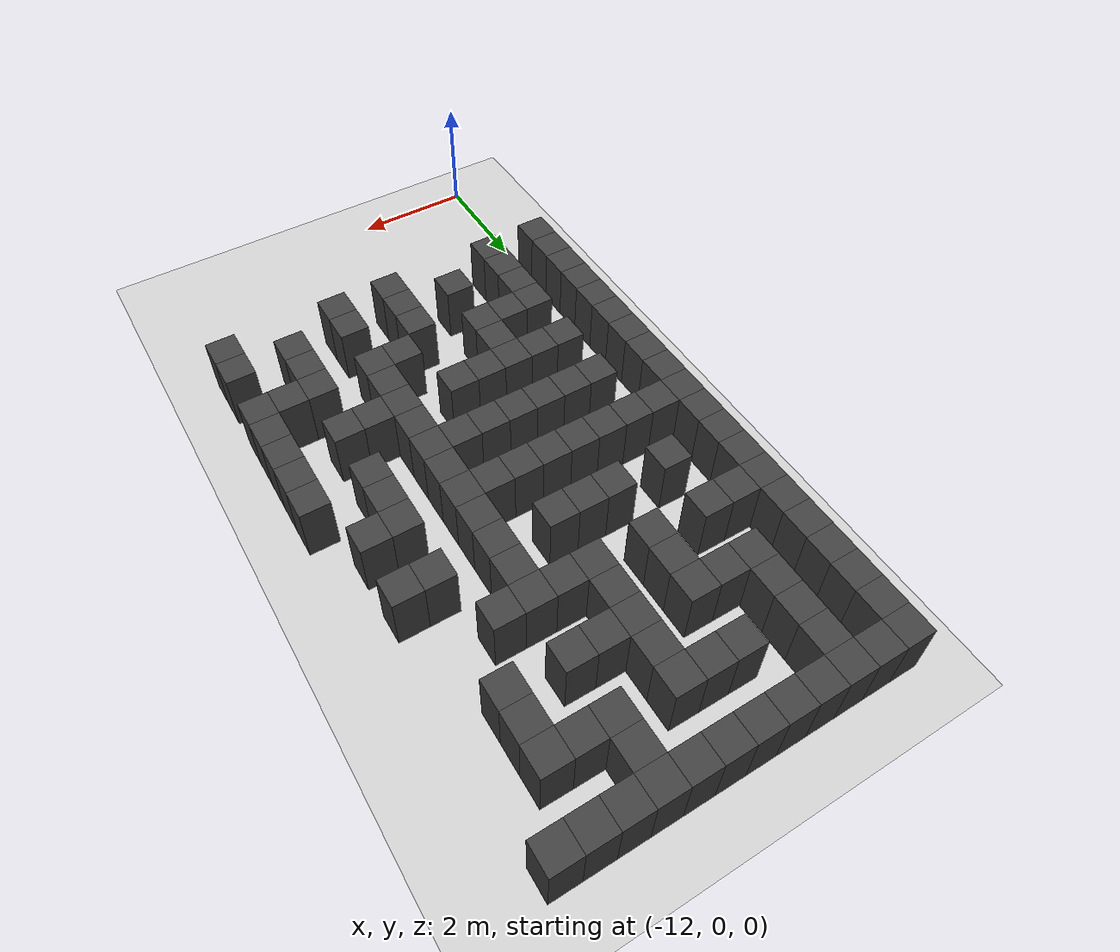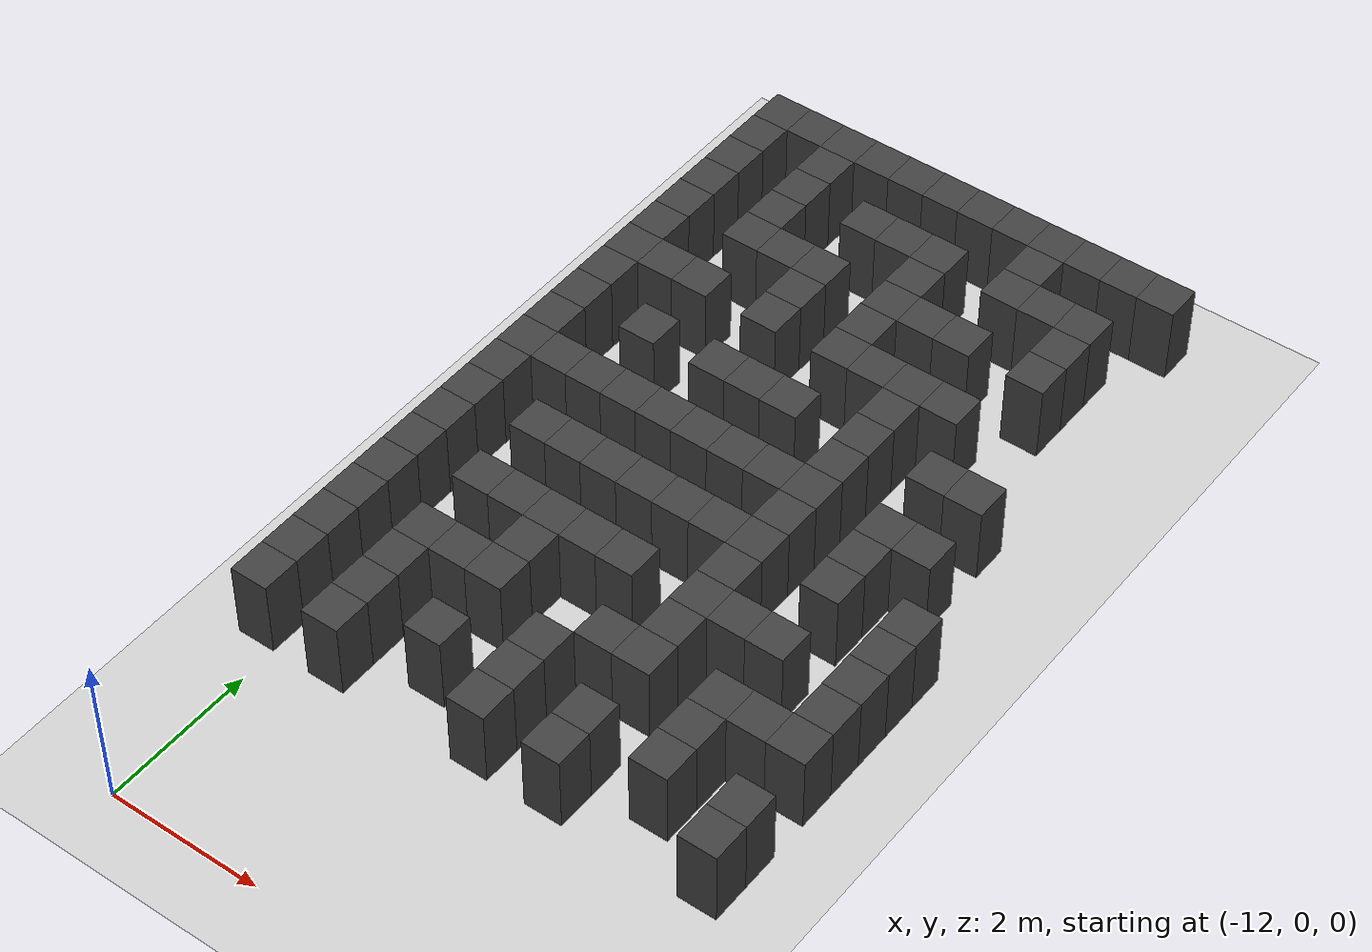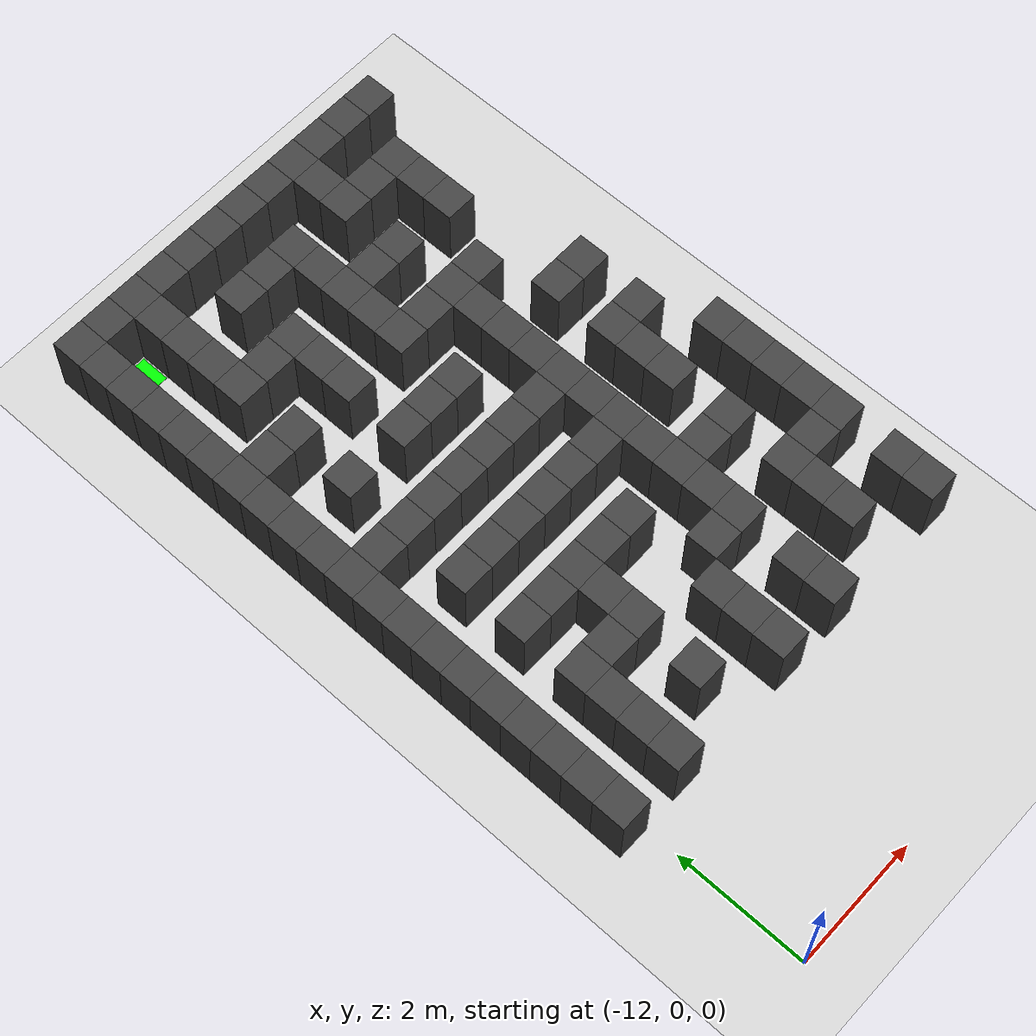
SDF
<sdf version="1.7">
 <world name="map_16734">
  <model name="ground_plane">
   <static>true</static>
   <link name="link">
    <collision name="collision">
     <geometry><plane><normal>0 0 1</normal><size>200 200</size></plane></geometry>
    </collision>
    <visual name="visual">
     <geometry><plane><normal>0 0 1</normal><size>200 200</size></plane></geometry>
     <material><ambient>0.8 0.8 0.8 1</ambient><diffuse>0.8 0.8 0.8 1</diffuse></material>
    </visual>
   </link>
  </model>
  <model name="maze_environment">
   <static>true</static>
   <link name="wall_0">
    <pose>-12.250 12.250 0.500 0 0 0</pose>
    <collision name="col"><geometry><box><size>0.5 0.5 1.0</size></box></geometry></collision>
    <visual name="vis">
     <geometry><box><size>0.5 0.5 1.0</size></box></geometry>
     <material><ambient>0.15 0.15 0.15 1</ambient><diffuse>0.25 0.25 0.25 1</diffuse></material>
    </visual>
   </link>
   <link name="wall_1">
    <pose>-11.750 12.250 0.500 0 0 0</pose>
    <collision name="col"><geometry><box><size>0.5 0.5 1.0</size></box></geometry></collision>
    <visual name="vis">
     <geometry><box><size>0.5 0.5 1.0</size></box></geometry>
     <material><ambient>0.15 0.15 0.15 1</ambient><diffuse>0.25 0.25 0.25 1</diffuse></material>
    </visual>
   </link>
   <link name="wall_2">
    <pose>-11.250 12.250 0.500 0 0 0</pose>
    <collision name="col"><geometry><box><size>0.5 0.5 1.0</size></box></geometry></collision>
    <visual name="vis">
     <geometry><box><size>0.5 0.5 1.0</size></box></geometry>
     <material><ambient>0.15 0.15 0.15 1</ambient><diffuse>0.25 0.25 0.25 1</diffuse></material>
    </visual>
   </link>
   <link name="wall_3">
    <pose>-10.750 12.250 0.500 0 0 0</pose>
    <collision name="col"><geometry><box><size>0.5 0.5 1.0</size></box></geometry></collision>
    <visual name="vis">
     <geometry><box><size>0.5 0.5 1.0</size></box></geometry>
     <material><ambient>0.15 0.15 0.15 1</ambient><diffuse>0.25 0.25 0.25 1</diffuse></material>
    </visual>
   </link>
   <link name="wall_4">
    <pose>-10.250 12.250 0.500 0 0 0</pose>
    <collision name="col"><geometry><box><size>0.5 0.5 1.0</size></box></geometry></collision>
    <visual name="vis">
     <geometry><box><size>0.5 0.5 1.0</size></box></geometry>
     <material><ambient>0.15 0.15 0.15 1</ambient><diffuse>0.25 0.25 0.25 1</diffuse></material>
    </visual>
   </link>
   <link name="wall_5">
    <pose>-9.750 12.250 0.500 0 0 0</pose>
    <collision name="col"><geometry><box><size>0.5 0.5 1.0</size></box></geometry></collision>
    <visual name="vis">
     <geometry><box><size>0.5 0.5 1.0</size></box></geometry>
     <material><ambient>0.15 0.15 0.15 1</ambient><diffuse>0.25 0.25 0.25 1</diffuse></material>
    </visual>
   </link>
   <link name="wall_6">
    <pose>-9.250 12.250 0.500 0 0 0</pose>
    <collision name="col"><geometry><box><size>0.5 0.5 1.0</size></box></geometry></collision>
    <visual name="vis">
     <geometry><box><size>0.5 0.5 1.0</size></box></geometry>
     <material><ambient>0.15 0.15 0.15 1</ambient><diffuse>0.25 0.25 0.25 1</diffuse></material>
    </visual>
   </link>
   <link name="wall_7">
    <pose>-8.750 12.250 0.500 0 0 0</pose>
    <collision name="col"><geometry><box><size>0.5 0.5 1.0</size></box></geometry></collision>
    <visual name="vis">
     <geometry><box><size>0.5 0.5 1.0</size></box></geometry>
     <material><ambient>0.15 0.15 0.15 1</ambient><diffuse>0.25 0.25 0.25 1</diffuse></material>
    </visual>
   </link>
   <link name="wall_8">
    <pose>-8.250 12.250 0.500 0 0 0</pose>
    <collision name="col"><geometry><box><size>0.5 0.5 1.0</size></box></geometry></collision>
    <visual name="vis">
     <geometry><box><size>0.5 0.5 1.0</size></box></geometry>
     <material><ambient>0.15 0.15 0.15 1</ambient><diffuse>0.25 0.25 0.25 1</diffuse></material>
    </visual>
   </link>
   <link name="wall_9">
    <pose>-7.750 12.250 0.500 0 0 0</pose>
    <collision name="col"><geometry><box><size>0.5 0.5 1.0</size></box></geometry></collision>
    <visual name="vis">
     <geometry><box><size>0.5 0.5 1.0</size></box></geometry>
     <material><ambient>0.15 0.15 0.15 1</ambient><diffuse>0.25 0.25 0.25 1</diffuse></material>
    </visual>
   </link>
   <link name="wall_10">
    <pose>-7.250 12.250 0.500 0 0 0</pose>
    <collision name="col"><geometry><box><size>0.5 0.5 1.0</size></box></geometry></collision>
    <visual name="vis">
     <geometry><box><size>0.5 0.5 1.0</size></box></geometry>
     <material><ambient>0.15 0.15 0.15 1</ambient><diffuse>0.25 0.25 0.25 1</diffuse></material>
    </visual>
   </link>
   <link name="wall_11">
    <pose>-6.750 12.250 0.500 0 0 0</pose>
    <collision name="col"><geometry><box><size>0.5 0.5 1.0</size></box></geometry></collision>
    <visual name="vis">
     <geometry><box><size>0.5 0.5 1.0</size></box></geometry>
     <material><ambient>0.15 0.15 0.15 1</ambient><diffuse>0.25 0.25 0.25 1</diffuse></material>
    </visual>
   </link>
   <link name="wall_50">
    <pose>-12.250 11.750 0.500 0 0 0</pose>
    <collision name="col"><geometry><box><size>0.5 0.5 1.0</size></box></geometry></collision>
    <visual name="vis">
     <geometry><box><size>0.5 0.5 1.0</size></box></geometry>
     <material><ambient>0.15 0.15 0.15 1</ambient><diffuse>0.25 0.25 0.25 1</diffuse></material>
    </visual>
   </link>
   <link name="wall_51">
    <pose>-11.250 11.750 0.500 0 0 0</pose>
    <collision name="col"><geometry><box><size>0.5 0.5 1.0</size></box></geometry></collision>
    <visual name="vis">
     <geometry><box><size>0.5 0.5 1.0</size></box></geometry>
     <material><ambient>0.15 0.15 0.15 1</ambient><diffuse>0.25 0.25 0.25 1</diffuse></material>
    </visual>
   </link>
   <link name="wall_52">
    <pose>-8.250 11.750 0.500 0 0 0</pose>
    <collision name="col"><geometry><box><size>0.5 0.5 1.0</size></box></geometry></collision>
    <visual name="vis">
     <geometry><box><size>0.5 0.5 1.0</size></box></geometry>
     <material><ambient>0.15 0.15 0.15 1</ambient><diffuse>0.25 0.25 0.25 1</diffuse></material>
    </visual>
   </link>
   <link name="wall_58">
    <pose>-12.250 11.250 0.500 0 0 0</pose>
    <collision name="col"><geometry><box><size>0.5 0.5 1.0</size></box></geometry></collision>
    <visual name="vis">
     <geometry><box><size>0.5 0.5 1.0</size></box></geometry>
     <material><ambient>0.15 0.15 0.15 1</ambient><diffuse>0.25 0.25 0.25 1</diffuse></material>
    </visual>
   </link>
   <link name="wall_59">
    <pose>-11.250 11.250 0.500 0 0 0</pose>
    <collision name="col"><geometry><box><size>0.5 0.5 1.0</size></box></geometry></collision>
    <visual name="vis">
     <geometry><box><size>0.5 0.5 1.0</size></box></geometry>
     <material><ambient>0.15 0.15 0.15 1</ambient><diffuse>0.25 0.25 0.25 1</diffuse></material>
    </visual>
   </link>
   <link name="wall_60">
    <pose>-10.250 11.250 0.500 0 0 0</pose>
    <collision name="col"><geometry><box><size>0.5 0.5 1.0</size></box></geometry></collision>
    <visual name="vis">
     <geometry><box><size>0.5 0.5 1.0</size></box></geometry>
     <material><ambient>0.15 0.15 0.15 1</ambient><diffuse>0.25 0.25 0.25 1</diffuse></material>
    </visual>
   </link>
   <link name="wall_61">
    <pose>-9.750 11.250 0.500 0 0 0</pose>
    <collision name="col"><geometry><box><size>0.5 0.5 1.0</size></box></geometry></collision>
    <visual name="vis">
     <geometry><box><size>0.5 0.5 1.0</size></box></geometry>
     <material><ambient>0.15 0.15 0.15 1</ambient><diffuse>0.25 0.25 0.25 1</diffuse></material>
    </visual>
   </link>
   <link name="wall_62">
    <pose>-9.250 11.250 0.500 0 0 0</pose>
    <collision name="col"><geometry><box><size>0.5 0.5 1.0</size></box></geometry></collision>
    <visual name="vis">
     <geometry><box><size>0.5 0.5 1.0</size></box></geometry>
     <material><ambient>0.15 0.15 0.15 1</ambient><diffuse>0.25 0.25 0.25 1</diffuse></material>
    </visual>
   </link>
   <link name="wall_63">
    <pose>-8.250 11.250 0.500 0 0 0</pose>
    <collision name="col"><geometry><box><size>0.5 0.5 1.0</size></box></geometry></collision>
    <visual name="vis">
     <geometry><box><size>0.5 0.5 1.0</size></box></geometry>
     <material><ambient>0.15 0.15 0.15 1</ambient><diffuse>0.25 0.25 0.25 1</diffuse></material>
    </visual>
   </link>
   <link name="wall_64">
    <pose>-7.750 11.250 0.500 0 0 0</pose>
    <collision name="col"><geometry><box><size>0.5 0.5 1.0</size></box></geometry></collision>
    <visual name="vis">
     <geometry><box><size>0.5 0.5 1.0</size></box></geometry>
     <material><ambient>0.15 0.15 0.15 1</ambient><diffuse>0.25 0.25 0.25 1</diffuse></material>
    </visual>
   </link>
   <link name="wall_65">
    <pose>-7.250 11.250 0.500 0 0 0</pose>
    <collision name="col"><geometry><box><size>0.5 0.5 1.0</size></box></geometry></collision>
    <visual name="vis">
     <geometry><box><size>0.5 0.5 1.0</size></box></geometry>
     <material><ambient>0.15 0.15 0.15 1</ambient><diffuse>0.25 0.25 0.25 1</diffuse></material>
    </visual>
   </link>
   <link name="wall_96">
    <pose>-12.250 10.750 0.500 0 0 0</pose>
    <collision name="col"><geometry><box><size>0.5 0.5 1.0</size></box></geometry></collision>
    <visual name="vis">
     <geometry><box><size>0.5 0.5 1.0</size></box></geometry>
     <material><ambient>0.15 0.15 0.15 1</ambient><diffuse>0.25 0.25 0.25 1</diffuse></material>
    </visual>
   </link>
   <link name="wall_97">
    <pose>-11.250 10.750 0.500 0 0 0</pose>
    <collision name="col"><geometry><box><size>0.5 0.5 1.0</size></box></geometry></collision>
    <visual name="vis">
     <geometry><box><size>0.5 0.5 1.0</size></box></geometry>
     <material><ambient>0.15 0.15 0.15 1</ambient><diffuse>0.25 0.25 0.25 1</diffuse></material>
    </visual>
   </link>
   <link name="wall_98">
    <pose>-9.250 10.750 0.500 0 0 0</pose>
    <collision name="col"><geometry><box><size>0.5 0.5 1.0</size></box></geometry></collision>
    <visual name="vis">
     <geometry><box><size>0.5 0.5 1.0</size></box></geometry>
     <material><ambient>0.15 0.15 0.15 1</ambient><diffuse>0.25 0.25 0.25 1</diffuse></material>
    </visual>
   </link>
   <link name="wall_99">
    <pose>-7.250 10.750 0.500 0 0 0</pose>
    <collision name="col"><geometry><box><size>0.5 0.5 1.0</size></box></geometry></collision>
    <visual name="vis">
     <geometry><box><size>0.5 0.5 1.0</size></box></geometry>
     <material><ambient>0.15 0.15 0.15 1</ambient><diffuse>0.25 0.25 0.25 1</diffuse></material>
    </visual>
   </link>
   <link name="wall_108">
    <pose>-12.250 10.250 0.500 0 0 0</pose>
    <collision name="col"><geometry><box><size>0.5 0.5 1.0</size></box></geometry></collision>
    <visual name="vis">
     <geometry><box><size>0.5 0.5 1.0</size></box></geometry>
     <material><ambient>0.15 0.15 0.15 1</ambient><diffuse>0.25 0.25 0.25 1</diffuse></material>
    </visual>
   </link>
   <link name="wall_109">
    <pose>-11.250 10.250 0.500 0 0 0</pose>
    <collision name="col"><geometry><box><size>0.5 0.5 1.0</size></box></geometry></collision>
    <visual name="vis">
     <geometry><box><size>0.5 0.5 1.0</size></box></geometry>
     <material><ambient>0.15 0.15 0.15 1</ambient><diffuse>0.25 0.25 0.25 1</diffuse></material>
    </visual>
   </link>
   <link name="wall_110">
    <pose>-10.750 10.250 0.500 0 0 0</pose>
    <collision name="col"><geometry><box><size>0.5 0.5 1.0</size></box></geometry></collision>
    <visual name="vis">
     <geometry><box><size>0.5 0.5 1.0</size></box></geometry>
     <material><ambient>0.15 0.15 0.15 1</ambient><diffuse>0.25 0.25 0.25 1</diffuse></material>
    </visual>
   </link>
   <link name="wall_111">
    <pose>-10.250 10.250 0.500 0 0 0</pose>
    <collision name="col"><geometry><box><size>0.5 0.5 1.0</size></box></geometry></collision>
    <visual name="vis">
     <geometry><box><size>0.5 0.5 1.0</size></box></geometry>
     <material><ambient>0.15 0.15 0.15 1</ambient><diffuse>0.25 0.25 0.25 1</diffuse></material>
    </visual>
   </link>
   <link name="wall_112">
    <pose>-9.250 10.250 0.500 0 0 0</pose>
    <collision name="col"><geometry><box><size>0.5 0.5 1.0</size></box></geometry></collision>
    <visual name="vis">
     <geometry><box><size>0.5 0.5 1.0</size></box></geometry>
     <material><ambient>0.15 0.15 0.15 1</ambient><diffuse>0.25 0.25 0.25 1</diffuse></material>
    </visual>
   </link>
   <link name="wall_113">
    <pose>-8.750 10.250 0.500 0 0 0</pose>
    <collision name="col"><geometry><box><size>0.5 0.5 1.0</size></box></geometry></collision>
    <visual name="vis">
     <geometry><box><size>0.5 0.5 1.0</size></box></geometry>
     <material><ambient>0.15 0.15 0.15 1</ambient><diffuse>0.25 0.25 0.25 1</diffuse></material>
    </visual>
   </link>
   <link name="wall_114">
    <pose>-8.250 10.250 0.500 0 0 0</pose>
    <collision name="col"><geometry><box><size>0.5 0.5 1.0</size></box></geometry></collision>
    <visual name="vis">
     <geometry><box><size>0.5 0.5 1.0</size></box></geometry>
     <material><ambient>0.15 0.15 0.15 1</ambient><diffuse>0.25 0.25 0.25 1</diffuse></material>
    </visual>
   </link>
   <link name="wall_115">
    <pose>-7.250 10.250 0.500 0 0 0</pose>
    <collision name="col"><geometry><box><size>0.5 0.5 1.0</size></box></geometry></collision>
    <visual name="vis">
     <geometry><box><size>0.5 0.5 1.0</size></box></geometry>
     <material><ambient>0.15 0.15 0.15 1</ambient><diffuse>0.25 0.25 0.25 1</diffuse></material>
    </visual>
   </link>
   <link name="wall_145">
    <pose>-12.250 9.750 0.500 0 0 0</pose>
    <collision name="col"><geometry><box><size>0.5 0.5 1.0</size></box></geometry></collision>
    <visual name="vis">
     <geometry><box><size>0.5 0.5 1.0</size></box></geometry>
     <material><ambient>0.15 0.15 0.15 1</ambient><diffuse>0.25 0.25 0.25 1</diffuse></material>
    </visual>
   </link>
   <link name="wall_146">
    <pose>-10.250 9.750 0.500 0 0 0</pose>
    <collision name="col"><geometry><box><size>0.5 0.5 1.0</size></box></geometry></collision>
    <visual name="vis">
     <geometry><box><size>0.5 0.5 1.0</size></box></geometry>
     <material><ambient>0.15 0.15 0.15 1</ambient><diffuse>0.25 0.25 0.25 1</diffuse></material>
    </visual>
   </link>
   <link name="wall_147">
    <pose>-9.250 9.750 0.500 0 0 0</pose>
    <collision name="col"><geometry><box><size>0.5 0.5 1.0</size></box></geometry></collision>
    <visual name="vis">
     <geometry><box><size>0.5 0.5 1.0</size></box></geometry>
     <material><ambient>0.15 0.15 0.15 1</ambient><diffuse>0.25 0.25 0.25 1</diffuse></material>
    </visual>
   </link>
   <link name="wall_158">
    <pose>-12.250 9.250 0.500 0 0 0</pose>
    <collision name="col"><geometry><box><size>0.5 0.5 1.0</size></box></geometry></collision>
    <visual name="vis">
     <geometry><box><size>0.5 0.5 1.0</size></box></geometry>
     <material><ambient>0.15 0.15 0.15 1</ambient><diffuse>0.25 0.25 0.25 1</diffuse></material>
    </visual>
   </link>
   <link name="wall_159">
    <pose>-11.750 9.250 0.500 0 0 0</pose>
    <collision name="col"><geometry><box><size>0.5 0.5 1.0</size></box></geometry></collision>
    <visual name="vis">
     <geometry><box><size>0.5 0.5 1.0</size></box></geometry>
     <material><ambient>0.15 0.15 0.15 1</ambient><diffuse>0.25 0.25 0.25 1</diffuse></material>
    </visual>
   </link>
   <link name="wall_160">
    <pose>-11.250 9.250 0.500 0 0 0</pose>
    <collision name="col"><geometry><box><size>0.5 0.5 1.0</size></box></geometry></collision>
    <visual name="vis">
     <geometry><box><size>0.5 0.5 1.0</size></box></geometry>
     <material><ambient>0.15 0.15 0.15 1</ambient><diffuse>0.25 0.25 0.25 1</diffuse></material>
    </visual>
   </link>
   <link name="wall_161">
    <pose>-10.250 9.250 0.500 0 0 0</pose>
    <collision name="col"><geometry><box><size>0.5 0.5 1.0</size></box></geometry></collision>
    <visual name="vis">
     <geometry><box><size>0.5 0.5 1.0</size></box></geometry>
     <material><ambient>0.15 0.15 0.15 1</ambient><diffuse>0.25 0.25 0.25 1</diffuse></material>
    </visual>
   </link>
   <link name="wall_162">
    <pose>-9.250 9.250 0.500 0 0 0</pose>
    <collision name="col"><geometry><box><size>0.5 0.5 1.0</size></box></geometry></collision>
    <visual name="vis">
     <geometry><box><size>0.5 0.5 1.0</size></box></geometry>
     <material><ambient>0.15 0.15 0.15 1</ambient><diffuse>0.25 0.25 0.25 1</diffuse></material>
    </visual>
   </link>
   <link name="wall_163">
    <pose>-8.750 9.250 0.500 0 0 0</pose>
    <collision name="col"><geometry><box><size>0.5 0.5 1.0</size></box></geometry></collision>
    <visual name="vis">
     <geometry><box><size>0.5 0.5 1.0</size></box></geometry>
     <material><ambient>0.15 0.15 0.15 1</ambient><diffuse>0.25 0.25 0.25 1</diffuse></material>
    </visual>
   </link>
   <link name="wall_164">
    <pose>-8.250 9.250 0.500 0 0 0</pose>
    <collision name="col"><geometry><box><size>0.5 0.5 1.0</size></box></geometry></collision>
    <visual name="vis">
     <geometry><box><size>0.5 0.5 1.0</size></box></geometry>
     <material><ambient>0.15 0.15 0.15 1</ambient><diffuse>0.25 0.25 0.25 1</diffuse></material>
    </visual>
   </link>
   <link name="wall_165">
    <pose>-7.750 9.250 0.500 0 0 0</pose>
    <collision name="col"><geometry><box><size>0.5 0.5 1.0</size></box></geometry></collision>
    <visual name="vis">
     <geometry><box><size>0.5 0.5 1.0</size></box></geometry>
     <material><ambient>0.15 0.15 0.15 1</ambient><diffuse>0.25 0.25 0.25 1</diffuse></material>
    </visual>
   </link>
   <link name="wall_188">
    <pose>-12.250 8.750 0.500 0 0 0</pose>
    <collision name="col"><geometry><box><size>0.5 0.5 1.0</size></box></geometry></collision>
    <visual name="vis">
     <geometry><box><size>0.5 0.5 1.0</size></box></geometry>
     <material><ambient>0.15 0.15 0.15 1</ambient><diffuse>0.25 0.25 0.25 1</diffuse></material>
    </visual>
   </link>
   <link name="wall_189">
    <pose>-8.250 8.750 0.500 0 0 0</pose>
    <collision name="col"><geometry><box><size>0.5 0.5 1.0</size></box></geometry></collision>
    <visual name="vis">
     <geometry><box><size>0.5 0.5 1.0</size></box></geometry>
     <material><ambient>0.15 0.15 0.15 1</ambient><diffuse>0.25 0.25 0.25 1</diffuse></material>
    </visual>
   </link>
   <link name="wall_200">
    <pose>-12.250 8.250 0.500 0 0 0</pose>
    <collision name="col"><geometry><box><size>0.5 0.5 1.0</size></box></geometry></collision>
    <visual name="vis">
     <geometry><box><size>0.5 0.5 1.0</size></box></geometry>
     <material><ambient>0.15 0.15 0.15 1</ambient><diffuse>0.25 0.25 0.25 1</diffuse></material>
    </visual>
   </link>
   <link name="wall_201">
    <pose>-11.250 8.250 0.500 0 0 0</pose>
    <collision name="col"><geometry><box><size>0.5 0.5 1.0</size></box></geometry></collision>
    <visual name="vis">
     <geometry><box><size>0.5 0.5 1.0</size></box></geometry>
     <material><ambient>0.15 0.15 0.15 1</ambient><diffuse>0.25 0.25 0.25 1</diffuse></material>
    </visual>
   </link>
   <link name="wall_202">
    <pose>-10.250 8.250 0.500 0 0 0</pose>
    <collision name="col"><geometry><box><size>0.5 0.5 1.0</size></box></geometry></collision>
    <visual name="vis">
     <geometry><box><size>0.5 0.5 1.0</size></box></geometry>
     <material><ambient>0.15 0.15 0.15 1</ambient><diffuse>0.25 0.25 0.25 1</diffuse></material>
    </visual>
   </link>
   <link name="wall_203">
    <pose>-9.750 8.250 0.500 0 0 0</pose>
    <collision name="col"><geometry><box><size>0.5 0.5 1.0</size></box></geometry></collision>
    <visual name="vis">
     <geometry><box><size>0.5 0.5 1.0</size></box></geometry>
     <material><ambient>0.15 0.15 0.15 1</ambient><diffuse>0.25 0.25 0.25 1</diffuse></material>
    </visual>
   </link>
   <link name="wall_204">
    <pose>-9.250 8.250 0.500 0 0 0</pose>
    <collision name="col"><geometry><box><size>0.5 0.5 1.0</size></box></geometry></collision>
    <visual name="vis">
     <geometry><box><size>0.5 0.5 1.0</size></box></geometry>
     <material><ambient>0.15 0.15 0.15 1</ambient><diffuse>0.25 0.25 0.25 1</diffuse></material>
    </visual>
   </link>
   <link name="wall_205">
    <pose>-8.250 8.250 0.500 0 0 0</pose>
    <collision name="col"><geometry><box><size>0.5 0.5 1.0</size></box></geometry></collision>
    <visual name="vis">
     <geometry><box><size>0.5 0.5 1.0</size></box></geometry>
     <material><ambient>0.15 0.15 0.15 1</ambient><diffuse>0.25 0.25 0.25 1</diffuse></material>
    </visual>
   </link>
   <link name="wall_206">
    <pose>-7.250 8.250 0.500 0 0 0</pose>
    <collision name="col"><geometry><box><size>0.5 0.5 1.0</size></box></geometry></collision>
    <visual name="vis">
     <geometry><box><size>0.5 0.5 1.0</size></box></geometry>
     <material><ambient>0.15 0.15 0.15 1</ambient><diffuse>0.25 0.25 0.25 1</diffuse></material>
    </visual>
   </link>
   <link name="wall_207">
    <pose>-6.750 8.250 0.500 0 0 0</pose>
    <collision name="col"><geometry><box><size>0.5 0.5 1.0</size></box></geometry></collision>
    <visual name="vis">
     <geometry><box><size>0.5 0.5 1.0</size></box></geometry>
     <material><ambient>0.15 0.15 0.15 1</ambient><diffuse>0.25 0.25 0.25 1</diffuse></material>
    </visual>
   </link>
   <link name="wall_237">
    <pose>-12.250 7.750 0.500 0 0 0</pose>
    <collision name="col"><geometry><box><size>0.5 0.5 1.0</size></box></geometry></collision>
    <visual name="vis">
     <geometry><box><size>0.5 0.5 1.0</size></box></geometry>
     <material><ambient>0.15 0.15 0.15 1</ambient><diffuse>0.25 0.25 0.25 1</diffuse></material>
    </visual>
   </link>
   <link name="wall_238">
    <pose>-8.250 7.750 0.500 0 0 0</pose>
    <collision name="col"><geometry><box><size>0.5 0.5 1.0</size></box></geometry></collision>
    <visual name="vis">
     <geometry><box><size>0.5 0.5 1.0</size></box></geometry>
     <material><ambient>0.15 0.15 0.15 1</ambient><diffuse>0.25 0.25 0.25 1</diffuse></material>
    </visual>
   </link>
   <link name="wall_245">
    <pose>-12.250 7.250 0.500 0 0 0</pose>
    <collision name="col"><geometry><box><size>0.5 0.5 1.0</size></box></geometry></collision>
    <visual name="vis">
     <geometry><box><size>0.5 0.5 1.0</size></box></geometry>
     <material><ambient>0.15 0.15 0.15 1</ambient><diffuse>0.25 0.25 0.25 1</diffuse></material>
    </visual>
   </link>
   <link name="wall_246">
    <pose>-11.750 7.250 0.500 0 0 0</pose>
    <collision name="col"><geometry><box><size>0.5 0.5 1.0</size></box></geometry></collision>
    <visual name="vis">
     <geometry><box><size>0.5 0.5 1.0</size></box></geometry>
     <material><ambient>0.15 0.15 0.15 1</ambient><diffuse>0.25 0.25 0.25 1</diffuse></material>
    </visual>
   </link>
   <link name="wall_247">
    <pose>-11.250 7.250 0.500 0 0 0</pose>
    <collision name="col"><geometry><box><size>0.5 0.5 1.0</size></box></geometry></collision>
    <visual name="vis">
     <geometry><box><size>0.5 0.5 1.0</size></box></geometry>
     <material><ambient>0.15 0.15 0.15 1</ambient><diffuse>0.25 0.25 0.25 1</diffuse></material>
    </visual>
   </link>
   <link name="wall_248">
    <pose>-10.750 7.250 0.500 0 0 0</pose>
    <collision name="col"><geometry><box><size>0.5 0.5 1.0</size></box></geometry></collision>
    <visual name="vis">
     <geometry><box><size>0.5 0.5 1.0</size></box></geometry>
     <material><ambient>0.15 0.15 0.15 1</ambient><diffuse>0.25 0.25 0.25 1</diffuse></material>
    </visual>
   </link>
   <link name="wall_249">
    <pose>-10.250 7.250 0.500 0 0 0</pose>
    <collision name="col"><geometry><box><size>0.5 0.5 1.0</size></box></geometry></collision>
    <visual name="vis">
     <geometry><box><size>0.5 0.5 1.0</size></box></geometry>
     <material><ambient>0.15 0.15 0.15 1</ambient><diffuse>0.25 0.25 0.25 1</diffuse></material>
    </visual>
   </link>
   <link name="wall_250">
    <pose>-9.750 7.250 0.500 0 0 0</pose>
    <collision name="col"><geometry><box><size>0.5 0.5 1.0</size></box></geometry></collision>
    <visual name="vis">
     <geometry><box><size>0.5 0.5 1.0</size></box></geometry>
     <material><ambient>0.15 0.15 0.15 1</ambient><diffuse>0.25 0.25 0.25 1</diffuse></material>
    </visual>
   </link>
   <link name="wall_251">
    <pose>-9.250 7.250 0.500 0 0 0</pose>
    <collision name="col"><geometry><box><size>0.5 0.5 1.0</size></box></geometry></collision>
    <visual name="vis">
     <geometry><box><size>0.5 0.5 1.0</size></box></geometry>
     <material><ambient>0.15 0.15 0.15 1</ambient><diffuse>0.25 0.25 0.25 1</diffuse></material>
    </visual>
   </link>
   <link name="wall_252">
    <pose>-8.750 7.250 0.500 0 0 0</pose>
    <collision name="col"><geometry><box><size>0.5 0.5 1.0</size></box></geometry></collision>
    <visual name="vis">
     <geometry><box><size>0.5 0.5 1.0</size></box></geometry>
     <material><ambient>0.15 0.15 0.15 1</ambient><diffuse>0.25 0.25 0.25 1</diffuse></material>
    </visual>
   </link>
   <link name="wall_253">
    <pose>-8.250 7.250 0.500 0 0 0</pose>
    <collision name="col"><geometry><box><size>0.5 0.5 1.0</size></box></geometry></collision>
    <visual name="vis">
     <geometry><box><size>0.5 0.5 1.0</size></box></geometry>
     <material><ambient>0.15 0.15 0.15 1</ambient><diffuse>0.25 0.25 0.25 1</diffuse></material>
    </visual>
   </link>
   <link name="wall_254">
    <pose>-7.250 7.250 0.500 0 0 0</pose>
    <collision name="col"><geometry><box><size>0.5 0.5 1.0</size></box></geometry></collision>
    <visual name="vis">
     <geometry><box><size>0.5 0.5 1.0</size></box></geometry>
     <material><ambient>0.15 0.15 0.15 1</ambient><diffuse>0.25 0.25 0.25 1</diffuse></material>
    </visual>
   </link>
   <link name="wall_255">
    <pose>-6.750 7.250 0.500 0 0 0</pose>
    <collision name="col"><geometry><box><size>0.5 0.5 1.0</size></box></geometry></collision>
    <visual name="vis">
     <geometry><box><size>0.5 0.5 1.0</size></box></geometry>
     <material><ambient>0.15 0.15 0.15 1</ambient><diffuse>0.25 0.25 0.25 1</diffuse></material>
    </visual>
   </link>
   <link name="wall_283">
    <pose>-12.250 6.750 0.500 0 0 0</pose>
    <collision name="col"><geometry><box><size>0.5 0.5 1.0</size></box></geometry></collision>
    <visual name="vis">
     <geometry><box><size>0.5 0.5 1.0</size></box></geometry>
     <material><ambient>0.15 0.15 0.15 1</ambient><diffuse>0.25 0.25 0.25 1</diffuse></material>
    </visual>
   </link>
   <link name="wall_284">
    <pose>-8.250 6.750 0.500 0 0 0</pose>
    <collision name="col"><geometry><box><size>0.5 0.5 1.0</size></box></geometry></collision>
    <visual name="vis">
     <geometry><box><size>0.5 0.5 1.0</size></box></geometry>
     <material><ambient>0.15 0.15 0.15 1</ambient><diffuse>0.25 0.25 0.25 1</diffuse></material>
    </visual>
   </link>
   <link name="wall_285">
    <pose>-7.250 6.750 0.500 0 0 0</pose>
    <collision name="col"><geometry><box><size>0.5 0.5 1.0</size></box></geometry></collision>
    <visual name="vis">
     <geometry><box><size>0.5 0.5 1.0</size></box></geometry>
     <material><ambient>0.15 0.15 0.15 1</ambient><diffuse>0.25 0.25 0.25 1</diffuse></material>
    </visual>
   </link>
   <link name="wall_296">
    <pose>-12.250 6.250 0.500 0 0 0</pose>
    <collision name="col"><geometry><box><size>0.5 0.5 1.0</size></box></geometry></collision>
    <visual name="vis">
     <geometry><box><size>0.5 0.5 1.0</size></box></geometry>
     <material><ambient>0.15 0.15 0.15 1</ambient><diffuse>0.25 0.25 0.25 1</diffuse></material>
    </visual>
   </link>
   <link name="wall_297">
    <pose>-11.250 6.250 0.500 0 0 0</pose>
    <collision name="col"><geometry><box><size>0.5 0.5 1.0</size></box></geometry></collision>
    <visual name="vis">
     <geometry><box><size>0.5 0.5 1.0</size></box></geometry>
     <material><ambient>0.15 0.15 0.15 1</ambient><diffuse>0.25 0.25 0.25 1</diffuse></material>
    </visual>
   </link>
   <link name="wall_298">
    <pose>-10.750 6.250 0.500 0 0 0</pose>
    <collision name="col"><geometry><box><size>0.5 0.5 1.0</size></box></geometry></collision>
    <visual name="vis">
     <geometry><box><size>0.5 0.5 1.0</size></box></geometry>
     <material><ambient>0.15 0.15 0.15 1</ambient><diffuse>0.25 0.25 0.25 1</diffuse></material>
    </visual>
   </link>
   <link name="wall_299">
    <pose>-10.250 6.250 0.500 0 0 0</pose>
    <collision name="col"><geometry><box><size>0.5 0.5 1.0</size></box></geometry></collision>
    <visual name="vis">
     <geometry><box><size>0.5 0.5 1.0</size></box></geometry>
     <material><ambient>0.15 0.15 0.15 1</ambient><diffuse>0.25 0.25 0.25 1</diffuse></material>
    </visual>
   </link>
   <link name="wall_300">
    <pose>-9.750 6.250 0.500 0 0 0</pose>
    <collision name="col"><geometry><box><size>0.5 0.5 1.0</size></box></geometry></collision>
    <visual name="vis">
     <geometry><box><size>0.5 0.5 1.0</size></box></geometry>
     <material><ambient>0.15 0.15 0.15 1</ambient><diffuse>0.25 0.25 0.25 1</diffuse></material>
    </visual>
   </link>
   <link name="wall_301">
    <pose>-9.250 6.250 0.500 0 0 0</pose>
    <collision name="col"><geometry><box><size>0.5 0.5 1.0</size></box></geometry></collision>
    <visual name="vis">
     <geometry><box><size>0.5 0.5 1.0</size></box></geometry>
     <material><ambient>0.15 0.15 0.15 1</ambient><diffuse>0.25 0.25 0.25 1</diffuse></material>
    </visual>
   </link>
   <link name="wall_302">
    <pose>-8.750 6.250 0.500 0 0 0</pose>
    <collision name="col"><geometry><box><size>0.5 0.5 1.0</size></box></geometry></collision>
    <visual name="vis">
     <geometry><box><size>0.5 0.5 1.0</size></box></geometry>
     <material><ambient>0.15 0.15 0.15 1</ambient><diffuse>0.25 0.25 0.25 1</diffuse></material>
    </visual>
   </link>
   <link name="wall_303">
    <pose>-8.250 6.250 0.500 0 0 0</pose>
    <collision name="col"><geometry><box><size>0.5 0.5 1.0</size></box></geometry></collision>
    <visual name="vis">
     <geometry><box><size>0.5 0.5 1.0</size></box></geometry>
     <material><ambient>0.15 0.15 0.15 1</ambient><diffuse>0.25 0.25 0.25 1</diffuse></material>
    </visual>
   </link>
   <link name="wall_304">
    <pose>-7.250 6.250 0.500 0 0 0</pose>
    <collision name="col"><geometry><box><size>0.5 0.5 1.0</size></box></geometry></collision>
    <visual name="vis">
     <geometry><box><size>0.5 0.5 1.0</size></box></geometry>
     <material><ambient>0.15 0.15 0.15 1</ambient><diffuse>0.25 0.25 0.25 1</diffuse></material>
    </visual>
   </link>
   <link name="wall_305">
    <pose>-6.250 6.250 0.500 0 0 0</pose>
    <collision name="col"><geometry><box><size>0.5 0.5 1.0</size></box></geometry></collision>
    <visual name="vis">
     <geometry><box><size>0.5 0.5 1.0</size></box></geometry>
     <material><ambient>0.15 0.15 0.15 1</ambient><diffuse>0.25 0.25 0.25 1</diffuse></material>
    </visual>
   </link>
   <link name="wall_334">
    <pose>-12.250 5.750 0.500 0 0 0</pose>
    <collision name="col"><geometry><box><size>0.5 0.5 1.0</size></box></geometry></collision>
    <visual name="vis">
     <geometry><box><size>0.5 0.5 1.0</size></box></geometry>
     <material><ambient>0.15 0.15 0.15 1</ambient><diffuse>0.25 0.25 0.25 1</diffuse></material>
    </visual>
   </link>
   <link name="wall_335">
    <pose>-8.250 5.750 0.500 0 0 0</pose>
    <collision name="col"><geometry><box><size>0.5 0.5 1.0</size></box></geometry></collision>
    <visual name="vis">
     <geometry><box><size>0.5 0.5 1.0</size></box></geometry>
     <material><ambient>0.15 0.15 0.15 1</ambient><diffuse>0.25 0.25 0.25 1</diffuse></material>
    </visual>
   </link>
   <link name="wall_336">
    <pose>-6.250 5.750 0.500 0 0 0</pose>
    <collision name="col"><geometry><box><size>0.5 0.5 1.0</size></box></geometry></collision>
    <visual name="vis">
     <geometry><box><size>0.5 0.5 1.0</size></box></geometry>
     <material><ambient>0.15 0.15 0.15 1</ambient><diffuse>0.25 0.25 0.25 1</diffuse></material>
    </visual>
   </link>
   <link name="wall_348">
    <pose>-12.250 5.250 0.500 0 0 0</pose>
    <collision name="col"><geometry><box><size>0.5 0.5 1.0</size></box></geometry></collision>
    <visual name="vis">
     <geometry><box><size>0.5 0.5 1.0</size></box></geometry>
     <material><ambient>0.15 0.15 0.15 1</ambient><diffuse>0.25 0.25 0.25 1</diffuse></material>
    </visual>
   </link>
   <link name="wall_349">
    <pose>-11.250 5.250 0.500 0 0 0</pose>
    <collision name="col"><geometry><box><size>0.5 0.5 1.0</size></box></geometry></collision>
    <visual name="vis">
     <geometry><box><size>0.5 0.5 1.0</size></box></geometry>
     <material><ambient>0.15 0.15 0.15 1</ambient><diffuse>0.25 0.25 0.25 1</diffuse></material>
    </visual>
   </link>
   <link name="wall_350">
    <pose>-10.750 5.250 0.500 0 0 0</pose>
    <collision name="col"><geometry><box><size>0.5 0.5 1.0</size></box></geometry></collision>
    <visual name="vis">
     <geometry><box><size>0.5 0.5 1.0</size></box></geometry>
     <material><ambient>0.15 0.15 0.15 1</ambient><diffuse>0.25 0.25 0.25 1</diffuse></material>
    </visual>
   </link>
   <link name="wall_351">
    <pose>-10.250 5.250 0.500 0 0 0</pose>
    <collision name="col"><geometry><box><size>0.5 0.5 1.0</size></box></geometry></collision>
    <visual name="vis">
     <geometry><box><size>0.5 0.5 1.0</size></box></geometry>
     <material><ambient>0.15 0.15 0.15 1</ambient><diffuse>0.25 0.25 0.25 1</diffuse></material>
    </visual>
   </link>
   <link name="wall_352">
    <pose>-9.750 5.250 0.500 0 0 0</pose>
    <collision name="col"><geometry><box><size>0.5 0.5 1.0</size></box></geometry></collision>
    <visual name="vis">
     <geometry><box><size>0.5 0.5 1.0</size></box></geometry>
     <material><ambient>0.15 0.15 0.15 1</ambient><diffuse>0.25 0.25 0.25 1</diffuse></material>
    </visual>
   </link>
   <link name="wall_353">
    <pose>-9.250 5.250 0.500 0 0 0</pose>
    <collision name="col"><geometry><box><size>0.5 0.5 1.0</size></box></geometry></collision>
    <visual name="vis">
     <geometry><box><size>0.5 0.5 1.0</size></box></geometry>
     <material><ambient>0.15 0.15 0.15 1</ambient><diffuse>0.25 0.25 0.25 1</diffuse></material>
    </visual>
   </link>
   <link name="wall_354">
    <pose>-8.250 5.250 0.500 0 0 0</pose>
    <collision name="col"><geometry><box><size>0.5 0.5 1.0</size></box></geometry></collision>
    <visual name="vis">
     <geometry><box><size>0.5 0.5 1.0</size></box></geometry>
     <material><ambient>0.15 0.15 0.15 1</ambient><diffuse>0.25 0.25 0.25 1</diffuse></material>
    </visual>
   </link>
   <link name="wall_355">
    <pose>-7.750 5.250 0.500 0 0 0</pose>
    <collision name="col"><geometry><box><size>0.5 0.5 1.0</size></box></geometry></collision>
    <visual name="vis">
     <geometry><box><size>0.5 0.5 1.0</size></box></geometry>
     <material><ambient>0.15 0.15 0.15 1</ambient><diffuse>0.25 0.25 0.25 1</diffuse></material>
    </visual>
   </link>
   <link name="wall_356">
    <pose>-7.250 5.250 0.500 0 0 0</pose>
    <collision name="col"><geometry><box><size>0.5 0.5 1.0</size></box></geometry></collision>
    <visual name="vis">
     <geometry><box><size>0.5 0.5 1.0</size></box></geometry>
     <material><ambient>0.15 0.15 0.15 1</ambient><diffuse>0.25 0.25 0.25 1</diffuse></material>
    </visual>
   </link>
   <link name="wall_357">
    <pose>-6.250 5.250 0.500 0 0 0</pose>
    <collision name="col"><geometry><box><size>0.5 0.5 1.0</size></box></geometry></collision>
    <visual name="vis">
     <geometry><box><size>0.5 0.5 1.0</size></box></geometry>
     <material><ambient>0.15 0.15 0.15 1</ambient><diffuse>0.25 0.25 0.25 1</diffuse></material>
    </visual>
   </link>
   <link name="wall_379">
    <pose>-12.250 4.750 0.500 0 0 0</pose>
    <collision name="col"><geometry><box><size>0.5 0.5 1.0</size></box></geometry></collision>
    <visual name="vis">
     <geometry><box><size>0.5 0.5 1.0</size></box></geometry>
     <material><ambient>0.15 0.15 0.15 1</ambient><diffuse>0.25 0.25 0.25 1</diffuse></material>
    </visual>
   </link>
   <link name="wall_380">
    <pose>-10.250 4.750 0.500 0 0 0</pose>
    <collision name="col"><geometry><box><size>0.5 0.5 1.0</size></box></geometry></collision>
    <visual name="vis">
     <geometry><box><size>0.5 0.5 1.0</size></box></geometry>
     <material><ambient>0.15 0.15 0.15 1</ambient><diffuse>0.25 0.25 0.25 1</diffuse></material>
    </visual>
   </link>
   <link name="wall_381">
    <pose>-8.250 4.750 0.500 0 0 0</pose>
    <collision name="col"><geometry><box><size>0.5 0.5 1.0</size></box></geometry></collision>
    <visual name="vis">
     <geometry><box><size>0.5 0.5 1.0</size></box></geometry>
     <material><ambient>0.15 0.15 0.15 1</ambient><diffuse>0.25 0.25 0.25 1</diffuse></material>
    </visual>
   </link>
   <link name="wall_382">
    <pose>-6.250 4.750 0.500 0 0 0</pose>
    <collision name="col"><geometry><box><size>0.5 0.5 1.0</size></box></geometry></collision>
    <visual name="vis">
     <geometry><box><size>0.5 0.5 1.0</size></box></geometry>
     <material><ambient>0.15 0.15 0.15 1</ambient><diffuse>0.25 0.25 0.25 1</diffuse></material>
    </visual>
   </link>
   <link name="wall_393">
    <pose>-12.250 4.250 0.500 0 0 0</pose>
    <collision name="col"><geometry><box><size>0.5 0.5 1.0</size></box></geometry></collision>
    <visual name="vis">
     <geometry><box><size>0.5 0.5 1.0</size></box></geometry>
     <material><ambient>0.15 0.15 0.15 1</ambient><diffuse>0.25 0.25 0.25 1</diffuse></material>
    </visual>
   </link>
   <link name="wall_394">
    <pose>-11.250 4.250 0.500 0 0 0</pose>
    <collision name="col"><geometry><box><size>0.5 0.5 1.0</size></box></geometry></collision>
    <visual name="vis">
     <geometry><box><size>0.5 0.5 1.0</size></box></geometry>
     <material><ambient>0.15 0.15 0.15 1</ambient><diffuse>0.25 0.25 0.25 1</diffuse></material>
    </visual>
   </link>
   <link name="wall_395">
    <pose>-10.750 4.250 0.500 0 0 0</pose>
    <collision name="col"><geometry><box><size>0.5 0.5 1.0</size></box></geometry></collision>
    <visual name="vis">
     <geometry><box><size>0.5 0.5 1.0</size></box></geometry>
     <material><ambient>0.15 0.15 0.15 1</ambient><diffuse>0.25 0.25 0.25 1</diffuse></material>
    </visual>
   </link>
   <link name="wall_396">
    <pose>-10.250 4.250 0.500 0 0 0</pose>
    <collision name="col"><geometry><box><size>0.5 0.5 1.0</size></box></geometry></collision>
    <visual name="vis">
     <geometry><box><size>0.5 0.5 1.0</size></box></geometry>
     <material><ambient>0.15 0.15 0.15 1</ambient><diffuse>0.25 0.25 0.25 1</diffuse></material>
    </visual>
   </link>
   <link name="wall_397">
    <pose>-8.750 4.250 0.500 0 0 0</pose>
    <collision name="col"><geometry><box><size>0.5 0.5 1.0</size></box></geometry></collision>
    <visual name="vis">
     <geometry><box><size>0.5 0.5 1.0</size></box></geometry>
     <material><ambient>0.15 0.15 0.15 1</ambient><diffuse>0.25 0.25 0.25 1</diffuse></material>
    </visual>
   </link>
   <link name="wall_398">
    <pose>-8.250 4.250 0.500 0 0 0</pose>
    <collision name="col"><geometry><box><size>0.5 0.5 1.0</size></box></geometry></collision>
    <visual name="vis">
     <geometry><box><size>0.5 0.5 1.0</size></box></geometry>
     <material><ambient>0.15 0.15 0.15 1</ambient><diffuse>0.25 0.25 0.25 1</diffuse></material>
    </visual>
   </link>
   <link name="wall_399">
    <pose>-7.250 4.250 0.500 0 0 0</pose>
    <collision name="col"><geometry><box><size>0.5 0.5 1.0</size></box></geometry></collision>
    <visual name="vis">
     <geometry><box><size>0.5 0.5 1.0</size></box></geometry>
     <material><ambient>0.15 0.15 0.15 1</ambient><diffuse>0.25 0.25 0.25 1</diffuse></material>
    </visual>
   </link>
   <link name="wall_400">
    <pose>-6.750 4.250 0.500 0 0 0</pose>
    <collision name="col"><geometry><box><size>0.5 0.5 1.0</size></box></geometry></collision>
    <visual name="vis">
     <geometry><box><size>0.5 0.5 1.0</size></box></geometry>
     <material><ambient>0.15 0.15 0.15 1</ambient><diffuse>0.25 0.25 0.25 1</diffuse></material>
    </visual>
   </link>
   <link name="wall_401">
    <pose>-6.250 4.250 0.500 0 0 0</pose>
    <collision name="col"><geometry><box><size>0.5 0.5 1.0</size></box></geometry></collision>
    <visual name="vis">
     <geometry><box><size>0.5 0.5 1.0</size></box></geometry>
     <material><ambient>0.15 0.15 0.15 1</ambient><diffuse>0.25 0.25 0.25 1</diffuse></material>
    </visual>
   </link>
   <link name="wall_428">
    <pose>-12.250 3.750 0.500 0 0 0</pose>
    <collision name="col"><geometry><box><size>0.5 0.5 1.0</size></box></geometry></collision>
    <visual name="vis">
     <geometry><box><size>0.5 0.5 1.0</size></box></geometry>
     <material><ambient>0.15 0.15 0.15 1</ambient><diffuse>0.25 0.25 0.25 1</diffuse></material>
    </visual>
   </link>
   <link name="wall_429">
    <pose>-11.250 3.750 0.500 0 0 0</pose>
    <collision name="col"><geometry><box><size>0.5 0.5 1.0</size></box></geometry></collision>
    <visual name="vis">
     <geometry><box><size>0.5 0.5 1.0</size></box></geometry>
     <material><ambient>0.15 0.15 0.15 1</ambient><diffuse>0.25 0.25 0.25 1</diffuse></material>
    </visual>
   </link>
   <link name="wall_430">
    <pose>-9.250 3.750 0.500 0 0 0</pose>
    <collision name="col"><geometry><box><size>0.5 0.5 1.0</size></box></geometry></collision>
    <visual name="vis">
     <geometry><box><size>0.5 0.5 1.0</size></box></geometry>
     <material><ambient>0.15 0.15 0.15 1</ambient><diffuse>0.25 0.25 0.25 1</diffuse></material>
    </visual>
   </link>
   <link name="wall_431">
    <pose>-7.250 3.750 0.500 0 0 0</pose>
    <collision name="col"><geometry><box><size>0.5 0.5 1.0</size></box></geometry></collision>
    <visual name="vis">
     <geometry><box><size>0.5 0.5 1.0</size></box></geometry>
     <material><ambient>0.15 0.15 0.15 1</ambient><diffuse>0.25 0.25 0.25 1</diffuse></material>
    </visual>
   </link>
   <link name="wall_439">
    <pose>-12.250 3.250 0.500 0 0 0</pose>
    <collision name="col"><geometry><box><size>0.5 0.5 1.0</size></box></geometry></collision>
    <visual name="vis">
     <geometry><box><size>0.5 0.5 1.0</size></box></geometry>
     <material><ambient>0.15 0.15 0.15 1</ambient><diffuse>0.25 0.25 0.25 1</diffuse></material>
    </visual>
   </link>
   <link name="wall_440">
    <pose>-11.250 3.250 0.500 0 0 0</pose>
    <collision name="col"><geometry><box><size>0.5 0.5 1.0</size></box></geometry></collision>
    <visual name="vis">
     <geometry><box><size>0.5 0.5 1.0</size></box></geometry>
     <material><ambient>0.15 0.15 0.15 1</ambient><diffuse>0.25 0.25 0.25 1</diffuse></material>
    </visual>
   </link>
   <link name="wall_441">
    <pose>-10.250 3.250 0.500 0 0 0</pose>
    <collision name="col"><geometry><box><size>0.5 0.5 1.0</size></box></geometry></collision>
    <visual name="vis">
     <geometry><box><size>0.5 0.5 1.0</size></box></geometry>
     <material><ambient>0.15 0.15 0.15 1</ambient><diffuse>0.25 0.25 0.25 1</diffuse></material>
    </visual>
   </link>
   <link name="wall_442">
    <pose>-9.250 3.250 0.500 0 0 0</pose>
    <collision name="col"><geometry><box><size>0.5 0.5 1.0</size></box></geometry></collision>
    <visual name="vis">
     <geometry><box><size>0.5 0.5 1.0</size></box></geometry>
     <material><ambient>0.15 0.15 0.15 1</ambient><diffuse>0.25 0.25 0.25 1</diffuse></material>
    </visual>
   </link>
   <link name="wall_443">
    <pose>-8.250 3.250 0.500 0 0 0</pose>
    <collision name="col"><geometry><box><size>0.5 0.5 1.0</size></box></geometry></collision>
    <visual name="vis">
     <geometry><box><size>0.5 0.5 1.0</size></box></geometry>
     <material><ambient>0.15 0.15 0.15 1</ambient><diffuse>0.25 0.25 0.25 1</diffuse></material>
    </visual>
   </link>
   <link name="wall_444">
    <pose>-7.250 3.250 0.500 0 0 0</pose>
    <collision name="col"><geometry><box><size>0.5 0.5 1.0</size></box></geometry></collision>
    <visual name="vis">
     <geometry><box><size>0.5 0.5 1.0</size></box></geometry>
     <material><ambient>0.15 0.15 0.15 1</ambient><diffuse>0.25 0.25 0.25 1</diffuse></material>
    </visual>
   </link>
   <link name="wall_445">
    <pose>-6.250 3.250 0.500 0 0 0</pose>
    <collision name="col"><geometry><box><size>0.5 0.5 1.0</size></box></geometry></collision>
    <visual name="vis">
     <geometry><box><size>0.5 0.5 1.0</size></box></geometry>
     <material><ambient>0.15 0.15 0.15 1</ambient><diffuse>0.25 0.25 0.25 1</diffuse></material>
    </visual>
   </link>
   <link name="wall_473">
    <pose>-12.250 2.750 0.500 0 0 0</pose>
    <collision name="col"><geometry><box><size>0.5 0.5 1.0</size></box></geometry></collision>
    <visual name="vis">
     <geometry><box><size>0.5 0.5 1.0</size></box></geometry>
     <material><ambient>0.15 0.15 0.15 1</ambient><diffuse>0.25 0.25 0.25 1</diffuse></material>
    </visual>
   </link>
   <link name="wall_474">
    <pose>-11.250 2.750 0.500 0 0 0</pose>
    <collision name="col"><geometry><box><size>0.5 0.5 1.0</size></box></geometry></collision>
    <visual name="vis">
     <geometry><box><size>0.5 0.5 1.0</size></box></geometry>
     <material><ambient>0.15 0.15 0.15 1</ambient><diffuse>0.25 0.25 0.25 1</diffuse></material>
    </visual>
   </link>
   <link name="wall_475">
    <pose>-9.250 2.750 0.500 0 0 0</pose>
    <collision name="col"><geometry><box><size>0.5 0.5 1.0</size></box></geometry></collision>
    <visual name="vis">
     <geometry><box><size>0.5 0.5 1.0</size></box></geometry>
     <material><ambient>0.15 0.15 0.15 1</ambient><diffuse>0.25 0.25 0.25 1</diffuse></material>
    </visual>
   </link>
   <link name="wall_476">
    <pose>-8.250 2.750 0.500 0 0 0</pose>
    <collision name="col"><geometry><box><size>0.5 0.5 1.0</size></box></geometry></collision>
    <visual name="vis">
     <geometry><box><size>0.5 0.5 1.0</size></box></geometry>
     <material><ambient>0.15 0.15 0.15 1</ambient><diffuse>0.25 0.25 0.25 1</diffuse></material>
    </visual>
   </link>
   <link name="wall_477">
    <pose>-6.250 2.750 0.500 0 0 0</pose>
    <collision name="col"><geometry><box><size>0.5 0.5 1.0</size></box></geometry></collision>
    <visual name="vis">
     <geometry><box><size>0.5 0.5 1.0</size></box></geometry>
     <material><ambient>0.15 0.15 0.15 1</ambient><diffuse>0.25 0.25 0.25 1</diffuse></material>
    </visual>
   </link>
   <link name="start_zone">
    <pose>-11.750 11.750 0.005 0 0 0</pose>
    <visual name="vis">
     <geometry><box><size>0.45 0.45 0.01</size></box></geometry>
     <material>
      <ambient>0.0 1.0 0.0 1</ambient>
      <diffuse>0.0 1.0 0.0 1</diffuse>
      <emissive>0.00 0.60 0.00 1</emissive>
     </material>
    </visual>
   </link>
  </model>
 </world>
</sdf>
